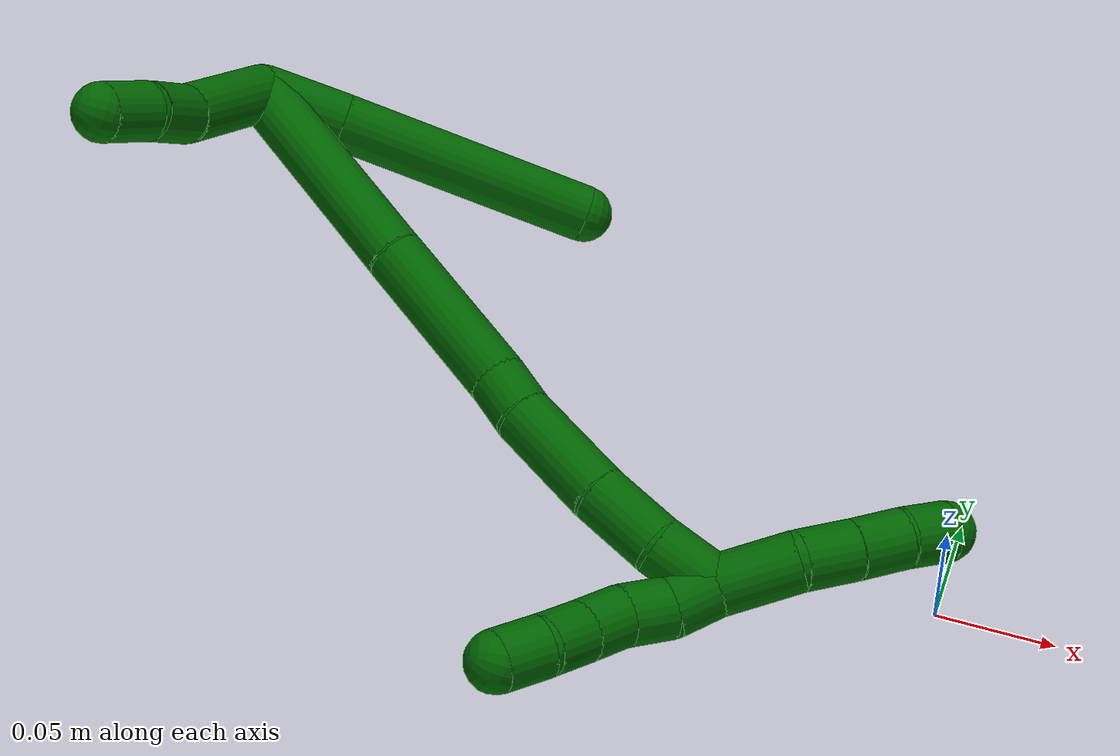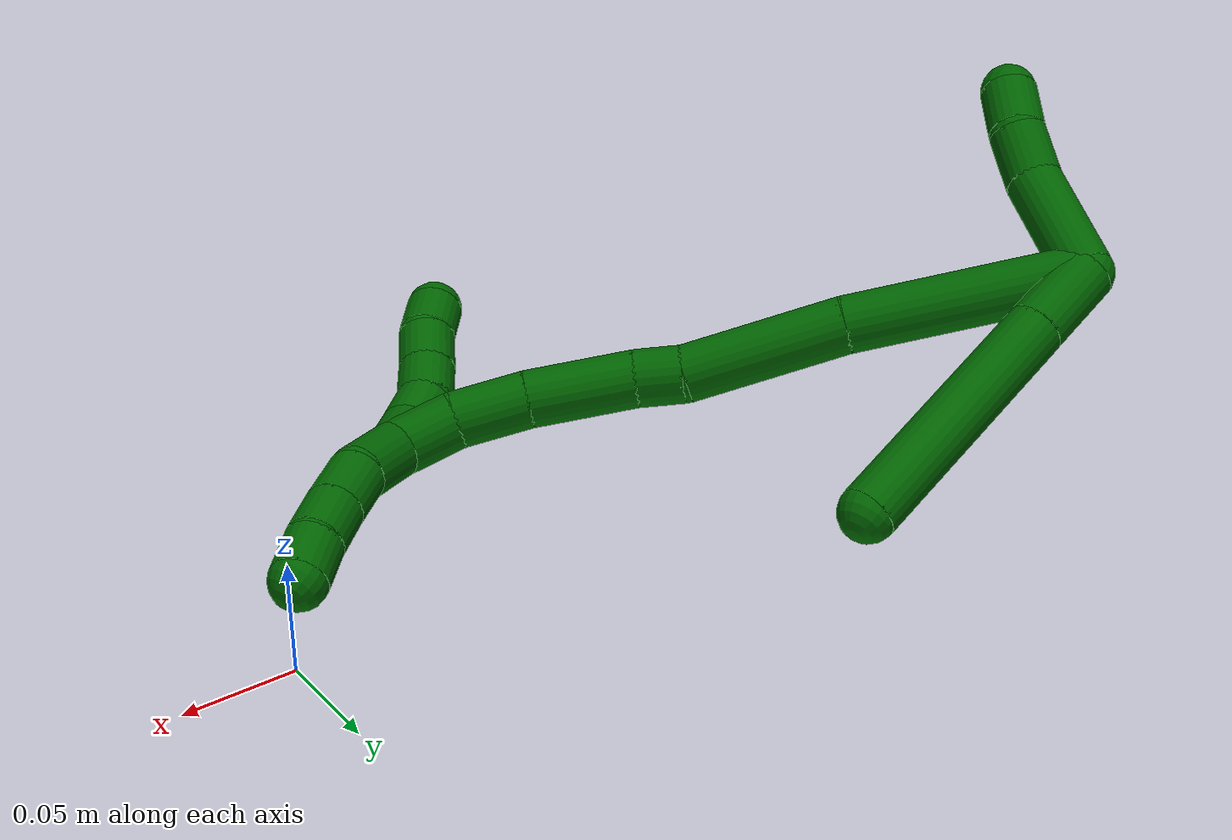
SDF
<sdf version="1.7">
 <world name="default">
  <model name="6">
   <static>0</static>
   <link name="6">
    <collision name="collision-cylinder-e_1_2_8">
     <pose>0.003204 -0.000626 -0.018126 3.10706 0.174856 2.75261</pose>
     <geometry><cylinder><radius>0.0125</radius><length>0.036834</length></cylinder></geometry>
     <surface>
      <friction><ode><mu>1.16</mu><mu2>1.16</mu2><slip1>0</slip1><slip2>0</slip2></ode></friction>
      <contact><ode><kp>1e+06</kp><kd>1</kd><max_vel>0</max_vel><min_depth>0.001</min_depth></ode></contact>
     </surface>
    </collision>
    <visual name="visual-cylinder-e_1_2_8">
     <pose>0.003204 -0.000626 -0.018126 3.10706 0.174856 2.75261</pose>
     <geometry><cylinder><radius>0.0125</radius><length>0.036834</length></cylinder></geometry>
     <material><ambient>0 0.392157 0.003922 1</ambient></material>
    </visual>
    <collision name="collision-cylinder-e_2_8_6">
     <pose>0.01605 -0.004088 -0.091934 3.0907 0.171234 2.56507</pose>
     <geometry><cylinder><radius>0.0125</radius><length>0.113166</length></cylinder></geometry>
     <surface>
      <friction><ode><mu>1.16</mu><mu2>1.16</mu2><slip1>0</slip1><slip2>0</slip2></ode></friction>
      <contact><ode><kp>1e+06</kp><kd>1</kd><max_vel>0</max_vel><min_depth>0.001</min_depth></ode></contact>
     </surface>
    </collision>
    <visual name="visual-cylinder-e_2_8_6">
     <pose>0.01605 -0.004088 -0.091934 3.0907 0.171234 2.56507</pose>
     <geometry><cylinder><radius>0.0125</radius><length>0.113166</length></cylinder></geometry>
     <material><ambient>0 0.392157 0.003922 1</ambient></material>
    </visual>
    <collision name="collision-cylinder-e_1_2_9">
     <pose>0.016166 -0.011413 0.017185 0.586252 0.664672 0.20759</pose>
     <geometry><cylinder><radius>0.0125</radius><length>0.052418</length></cylinder></geometry>
     <surface>
      <friction><ode><mu>1.16</mu><mu2>1.16</mu2><slip1>0</slip1><slip2>0</slip2></ode></friction>
      <contact><ode><kp>1e+06</kp><kd>1</kd><max_vel>0</max_vel><min_depth>0.001</min_depth></ode></contact>
     </surface>
    </collision>
    <visual name="visual-cylinder-e_1_2_9">
     <pose>0.016166 -0.011413 0.017185 0.586252 0.664672 0.20759</pose>
     <geometry><cylinder><radius>0.0125</radius><length>0.052418</length></cylinder></geometry>
     <material><ambient>0 0.392157 0.003922 1</ambient></material>
    </visual>
    <collision name="collision-cylinder-e_2_9_10">
     <pose>0.040492 -0.02547 0.043108 0.293798 0.729412 0.112861</pose>
     <geometry><cylinder><radius>0.0125</radius><length>0.02449</length></cylinder></geometry>
     <surface>
      <friction><ode><mu>1.16</mu><mu2>1.16</mu2><slip1>0</slip1><slip2>0</slip2></ode></friction>
      <contact><ode><kp>1e+06</kp><kd>1</kd><max_vel>0</max_vel><min_depth>0.001</min_depth></ode></contact>
     </surface>
    </collision>
    <visual name="visual-cylinder-e_2_9_10">
     <pose>0.040492 -0.02547 0.043108 0.293798 0.729412 0.112861</pose>
     <geometry><cylinder><radius>0.0125</radius><length>0.02449</length></cylinder></geometry>
     <material><ambient>0 0.392157 0.003922 1</ambient></material>
    </visual>
    <collision name="collision-cylinder-e_3_10_5">
     <pose>0.05411 -0.031837 0.061315 0.374606 0.49235 0.095172</pose>
     <geometry><cylinder><radius>0.0125</radius><length>0.023092</length></cylinder></geometry>
     <surface>
      <friction><ode><mu>1.16</mu><mu2>1.16</mu2><slip1>0</slip1><slip2>0</slip2></ode></friction>
      <contact><ode><kp>1e+06</kp><kd>1</kd><max_vel>0</max_vel><min_depth>0.001</min_depth></ode></contact>
     </surface>
    </collision>
    <visual name="visual-cylinder-e_3_10_5">
     <pose>0.05411 -0.031837 0.061315 0.374606 0.49235 0.095172</pose>
     <geometry><cylinder><radius>0.0125</radius><length>0.023092</length></cylinder></geometry>
     <material><ambient>0 0.392157 0.003922 1</ambient></material>
    </visual>
    <collision name="collision-cylinder-e_1_2_11">
     <pose>0.03057 -0.026689 -0.031056 2.43168 0.641275 1.46117</pose>
     <geometry><cylinder><radius>0.0125</radius><length>0.102202</length></cylinder></geometry>
     <surface>
      <friction><ode><mu>1.16</mu><mu2>1.16</mu2><slip1>0</slip1><slip2>0</slip2></ode></friction>
      <contact><ode><kp>1e+06</kp><kd>1</kd><max_vel>0</max_vel><min_depth>0.001</min_depth></ode></contact>
     </surface>
    </collision>
    <visual name="visual-cylinder-e_1_2_11">
     <pose>0.03057 -0.026689 -0.031056 2.43168 0.641275 1.46117</pose>
     <geometry><cylinder><radius>0.0125</radius><length>0.102202</length></cylinder></geometry>
     <material><ambient>0 0.392157 0.003922 1</ambient></material>
    </visual>
    <collision name="collision-cylinder-e_2_11_12">
     <pose>0.079913 -0.072105 -0.085444 2.46524 0.560423 1.3716</pose>
     <geometry><cylinder><radius>0.0125</radius><length>0.070638</length></cylinder></geometry>
     <surface>
      <friction><ode><mu>1.16</mu><mu2>1.16</mu2><slip1>0</slip1><slip2>0</slip2></ode></friction>
      <contact><ode><kp>1e+06</kp><kd>1</kd><max_vel>0</max_vel><min_depth>0.001</min_depth></ode></contact>
     </surface>
    </collision>
    <visual name="visual-cylinder-e_2_11_12">
     <pose>0.079913 -0.072105 -0.085444 2.46524 0.560423 1.3716</pose>
     <geometry><cylinder><radius>0.0125</radius><length>0.070638</length></cylinder></geometry>
     <material><ambient>0 0.392157 0.003922 1</ambient></material>
    </visual>
    <collision name="collision-cylinder-e_3_12_13">
     <pose>0.105665 -0.096457 -0.114046 2.32374 0.735633 1.45367</pose>
     <geometry><cylinder><radius>0.0125</radius><length>0.020797</length></cylinder></geometry>
     <surface>
      <friction><ode><mu>1.16</mu><mu2>1.16</mu2><slip1>0</slip1><slip2>0</slip2></ode></friction>
      <contact><ode><kp>1e+06</kp><kd>1</kd><max_vel>0</max_vel><min_depth>0.001</min_depth></ode></contact>
     </surface>
    </collision>
    <visual name="visual-cylinder-e_3_12_13">
     <pose>0.105665 -0.096457 -0.114046 2.32374 0.735633 1.45367</pose>
     <geometry><cylinder><radius>0.0125</radius><length>0.020797</length></cylinder></geometry>
     <material><ambient>0 0.392157 0.003922 1</ambient></material>
    </visual>
    <collision name="collision-cylinder-e_4_13_14">
     <pose>0.127429 -0.112691 -0.134059 2.51778 0.683307 1.66855</pose>
     <geometry><cylinder><radius>0.0125</radius><length>0.046839</length></cylinder></geometry>
     <surface>
      <friction><ode><mu>1.16</mu><mu2>1.16</mu2><slip1>0</slip1><slip2>0</slip2></ode></friction>
      <contact><ode><kp>1e+06</kp><kd>1</kd><max_vel>0</max_vel><min_depth>0.001</min_depth></ode></contact>
     </surface>
    </collision>
    <visual name="visual-cylinder-e_4_13_14">
     <pose>0.127429 -0.112691 -0.134059 2.51778 0.683307 1.66855</pose>
     <geometry><cylinder><radius>0.0125</radius><length>0.046839</length></cylinder></geometry>
     <material><ambient>0 0.392157 0.003922 1</ambient></material>
    </visual>
    <collision name="collision-cylinder-e_5_14_15">
     <pose>0.151435 -0.129592 -0.160288 2.6405 0.613351 1.78217</pose>
     <geometry><cylinder><radius>0.0125</radius><length>0.032036</length></cylinder></geometry>
     <surface>
      <friction><ode><mu>1.16</mu><mu2>1.16</mu2><slip1>0</slip1><slip2>0</slip2></ode></friction>
      <contact><ode><kp>1e+06</kp><kd>1</kd><max_vel>0</max_vel><min_depth>0.001</min_depth></ode></contact>
     </surface>
    </collision>
    <visual name="visual-cylinder-e_5_14_15">
     <pose>0.151435 -0.129592 -0.160288 2.6405 0.613351 1.78217</pose>
     <geometry><cylinder><radius>0.0125</radius><length>0.032036</length></cylinder></geometry>
     <material><ambient>0 0.392157 0.003922 1</ambient></material>
    </visual>
    <collision name="collision-cylinder-e_6_15_1">
     <pose>0.166647 -0.140347 -0.183311 2.7725 0.45112 1.77576</pose>
     <geometry><cylinder><radius>0.0125</radius><length>0.027487</length></cylinder></geometry>
     <surface>
      <friction><ode><mu>1.16</mu><mu2>1.16</mu2><slip1>0</slip1><slip2>0</slip2></ode></friction>
      <contact><ode><kp>1e+06</kp><kd>1</kd><max_vel>0</max_vel><min_depth>0.001</min_depth></ode></contact>
     </surface>
    </collision>
    <visual name="visual-cylinder-e_6_15_1">
     <pose>0.166647 -0.140347 -0.183311 2.7725 0.45112 1.77576</pose>
     <geometry><cylinder><radius>0.0125</radius><length>0.027487</length></cylinder></geometry>
     <material><ambient>0 0.392157 0.003922 1</ambient></material>
    </visual>
    <collision name="collision-cylinder-e_1_1_16">
     <pose>0.177457 -0.135295 -0.208288 -2.5256 0.284613 -0.846344</pose>
     <geometry><cylinder><radius>0.0125</radius><length>0.034315</length></cylinder></geometry>
     <surface>
      <friction><ode><mu>1.16</mu><mu2>1.16</mu2><slip1>0</slip1><slip2>0</slip2></ode></friction>
      <contact><ode><kp>1e+06</kp><kd>1</kd><max_vel>0</max_vel><min_depth>0.001</min_depth></ode></contact>
     </surface>
    </collision>
    <visual name="visual-cylinder-e_1_1_16">
     <pose>0.177457 -0.135295 -0.208288 -2.5256 0.284613 -0.846344</pose>
     <geometry><cylinder><radius>0.0125</radius><length>0.034315</length></cylinder></geometry>
     <material><ambient>0 0.392157 0.003922 1</ambient></material>
    </visual>
    <collision name="collision-cylinder-e_2_16_17">
     <pose>0.182592 -0.120533 -0.2323 -2.68088 0.026904 -0.114602</pose>
     <geometry><cylinder><radius>0.0125</radius><length>0.023614</length></cylinder></geometry>
     <surface>
      <friction><ode><mu>1.16</mu><mu2>1.16</mu2><slip1>0</slip1><slip2>0</slip2></ode></friction>
      <contact><ode><kp>1e+06</kp><kd>1</kd><max_vel>0</max_vel><min_depth>0.001</min_depth></ode></contact>
     </surface>
    </collision>
    <visual name="visual-cylinder-e_2_16_17">
     <pose>0.182592 -0.120533 -0.2323 -2.68088 0.026904 -0.114602</pose>
     <geometry><cylinder><radius>0.0125</radius><length>0.023614</length></cylinder></geometry>
     <material><ambient>0 0.392157 0.003922 1</ambient></material>
    </visual>
    <collision name="collision-cylinder-e_3_17_18">
     <pose>0.182787 -0.110193 -0.252567 -2.65794 -0.01115 0.045197</pose>
     <geometry><cylinder><radius>0.0125</radius><length>0.021904</length></cylinder></geometry>
     <surface>
      <friction><ode><mu>1.16</mu><mu2>1.16</mu2><slip1>0</slip1><slip2>0</slip2></ode></friction>
      <contact><ode><kp>1e+06</kp><kd>1</kd><max_vel>0</max_vel><min_depth>0.001</min_depth></ode></contact>
     </surface>
    </collision>
    <visual name="visual-cylinder-e_3_17_18">
     <pose>0.182787 -0.110193 -0.252567 -2.65794 -0.01115 0.045197</pose>
     <geometry><cylinder><radius>0.0125</radius><length>0.021904</length></cylinder></geometry>
     <material><ambient>0 0.392157 0.003922 1</ambient></material>
    </visual>
    <collision name="collision-cylinder-e_4_18_4">
     <pose>0.181311 -0.101302 -0.271504 -2.75159 -0.134758 0.658447</pose>
     <geometry><cylinder><radius>0.0125</radius><length>0.020167</length></cylinder></geometry>
     <surface>
      <friction><ode><mu>1.16</mu><mu2>1.16</mu2><slip1>0</slip1><slip2>0</slip2></ode></friction>
      <contact><ode><kp>1e+06</kp><kd>1</kd><max_vel>0</max_vel><min_depth>0.001</min_depth></ode></contact>
     </surface>
    </collision>
    <visual name="visual-cylinder-e_4_18_4">
     <pose>0.181311 -0.101302 -0.271504 -2.75159 -0.134758 0.658447</pose>
     <geometry><cylinder><radius>0.0125</radius><length>0.020167</length></cylinder></geometry>
     <material><ambient>0 0.392157 0.003922 1</ambient></material>
    </visual>
    <collision name="collision-cylinder-e_1_1_19">
     <pose>0.172107 -0.151262 -0.187226 0.70262 -0.053238 -0.019516</pose>
     <geometry><cylinder><radius>0.0125</radius><length>0.02</length></cylinder></geometry>
     <surface>
      <friction><ode><mu>1.16</mu><mu2>1.16</mu2><slip1>0</slip1><slip2>0</slip2></ode></friction>
      <contact><ode><kp>1e+06</kp><kd>1</kd><max_vel>0</max_vel><min_depth>0.001</min_depth></ode></contact>
     </surface>
    </collision>
    <visual name="visual-cylinder-e_1_1_19">
     <pose>0.172107 -0.151262 -0.187226 0.70262 -0.053238 -0.019516</pose>
     <geometry><cylinder><radius>0.0125</radius><length>0.02</length></cylinder></geometry>
     <material><ambient>0 0.392157 0.003922 1</ambient></material>
    </visual>
    <collision name="collision-cylinder-e_2_19_20">
     <pose>0.171753 -0.161784 -0.170472 0.41911 0.017827 0.003791</pose>
     <geometry><cylinder><radius>0.0125</radius><length>0.02</length></cylinder></geometry>
     <surface>
      <friction><ode><mu>1.16</mu><mu2>1.16</mu2><slip1>0</slip1><slip2>0</slip2></ode></friction>
      <contact><ode><kp>1e+06</kp><kd>1</kd><max_vel>0</max_vel><min_depth>0.001</min_depth></ode></contact>
     </surface>
    </collision>
    <visual name="visual-cylinder-e_2_19_20">
     <pose>0.171753 -0.161784 -0.170472 0.41911 0.017827 0.003791</pose>
     <geometry><cylinder><radius>0.0125</radius><length>0.02</length></cylinder></geometry>
     <material><ambient>0 0.392157 0.003922 1</ambient></material>
    </visual>
    <collision name="collision-cylinder-e_3_20_21">
     <pose>0.175012 -0.170717 -0.153164 0.536774 0.313169 0.086785</pose>
     <geometry><cylinder><radius>0.0125</radius><length>0.02</length></cylinder></geometry>
     <surface>
      <friction><ode><mu>1.16</mu><mu2>1.16</mu2><slip1>0</slip1><slip2>0</slip2></ode></friction>
      <contact><ode><kp>1e+06</kp><kd>1</kd><max_vel>0</max_vel><min_depth>0.001</min_depth></ode></contact>
     </surface>
    </collision>
    <visual name="visual-cylinder-e_3_20_21">
     <pose>0.175012 -0.170717 -0.153164 0.536774 0.313169 0.086785</pose>
     <geometry><cylinder><radius>0.0125</radius><length>0.02</length></cylinder></geometry>
     <material><ambient>0 0.392157 0.003922 1</ambient></material>
    </visual>
    <collision name="collision-cylinder-e_4_21_22">
     <pose>0.182009 -0.179899 -0.136862 0.488277 0.402408 0.101531</pose>
     <geometry><cylinder><radius>0.0125</radius><length>0.02</length></cylinder></geometry>
     <surface>
      <friction><ode><mu>1.16</mu><mu2>1.16</mu2><slip1>0</slip1><slip2>0</slip2></ode></friction>
      <contact><ode><kp>1e+06</kp><kd>1</kd><max_vel>0</max_vel><min_depth>0.001</min_depth></ode></contact>
     </surface>
    </collision>
    <visual name="visual-cylinder-e_4_21_22">
     <pose>0.182009 -0.179899 -0.136862 0.488277 0.402408 0.101531</pose>
     <geometry><cylinder><radius>0.0125</radius><length>0.02</length></cylinder></geometry>
     <material><ambient>0 0.392157 0.003922 1</ambient></material>
    </visual>
    <collision name="collision-cylinder-e_5_22_3">
     <pose>0.18758 -0.189127 -0.120184 0.521382 0.166167 0.044422</pose>
     <geometry><cylinder><radius>0.0125</radius><length>0.02</length></cylinder></geometry>
     <surface>
      <friction><ode><mu>1.16</mu><mu2>1.16</mu2><slip1>0</slip1><slip2>0</slip2></ode></friction>
      <contact><ode><kp>1e+06</kp><kd>1</kd><max_vel>0</max_vel><min_depth>0.001</min_depth></ode></contact>
     </surface>
    </collision>
    <visual name="visual-cylinder-e_5_22_3">
     <pose>0.18758 -0.189127 -0.120184 0.521382 0.166167 0.044422</pose>
     <geometry><cylinder><radius>0.0125</radius><length>0.02</length></cylinder></geometry>
     <material><ambient>0 0.392157 0.003922 1</ambient></material>
    </visual>
    <collision name="collision-sphere-3">
     <pose>0.189234 -0.194039 -0.111632 0 -0 0</pose>
     <geometry><sphere><radius>0.0125</radius></sphere></geometry>
     <surface>
      <friction><ode><mu>1.16</mu><mu2>1.16</mu2><slip1>0</slip1><slip2>0</slip2></ode></friction>
      <contact><ode><kp>1e+06</kp><kd>1</kd><max_vel>0</max_vel><min_depth>0.001</min_depth></ode></contact>
     </surface>
    </collision>
    <visual name="visual-sphere-3">
     <pose>0.189234 -0.194039 -0.111632 0 -0 0</pose>
     <geometry><sphere><radius>0.0125</radius></sphere></geometry>
     <material><ambient>0 0.392157 0.003922 1</ambient></material>
    </visual>
    <collision name="collision-sphere-22">
     <pose>0.185926 -0.184215 -0.128736 0 -0 0</pose>
     <geometry><sphere><radius>0.0125</radius></sphere></geometry>
     <surface>
      <friction><ode><mu>1.16</mu><mu2>1.16</mu2><slip1>0</slip1><slip2>0</slip2></ode></friction>
      <contact><ode><kp>1e+06</kp><kd>1</kd><max_vel>0</max_vel><min_depth>0.001</min_depth></ode></contact>
     </surface>
    </collision>
    <visual name="visual-sphere-22">
     <pose>0.185926 -0.184215 -0.128736 0 -0 0</pose>
     <geometry><sphere><radius>0.0125</radius></sphere></geometry>
     <material><ambient>0 0.392157 0.003922 1</ambient></material>
    </visual>
    <collision name="collision-sphere-21">
     <pose>0.178093 -0.175582 -0.144988 0 -0 0</pose>
     <geometry><sphere><radius>0.0125</radius></sphere></geometry>
     <surface>
      <friction><ode><mu>1.16</mu><mu2>1.16</mu2><slip1>0</slip1><slip2>0</slip2></ode></friction>
      <contact><ode><kp>1e+06</kp><kd>1</kd><max_vel>0</max_vel><min_depth>0.001</min_depth></ode></contact>
     </surface>
    </collision>
    <visual name="visual-sphere-21">
     <pose>0.178093 -0.175582 -0.144988 0 -0 0</pose>
     <geometry><sphere><radius>0.0125</radius></sphere></geometry>
     <material><ambient>0 0.392157 0.003922 1</ambient></material>
    </visual>
    <collision name="collision-sphere-20">
     <pose>0.171931 -0.165853 -0.161339 0 -0 0</pose>
     <geometry><sphere><radius>0.0125</radius></sphere></geometry>
     <surface>
      <friction><ode><mu>1.16</mu><mu2>1.16</mu2><slip1>0</slip1><slip2>0</slip2></ode></friction>
      <contact><ode><kp>1e+06</kp><kd>1</kd><max_vel>0</max_vel><min_depth>0.001</min_depth></ode></contact>
     </surface>
    </collision>
    <visual name="visual-sphere-20">
     <pose>0.171931 -0.165853 -0.161339 0 -0 0</pose>
     <geometry><sphere><radius>0.0125</radius></sphere></geometry>
     <material><ambient>0 0.392157 0.003922 1</ambient></material>
    </visual>
    <collision name="collision-sphere-19">
     <pose>0.171575 -0.157715 -0.179605 0 -0 0</pose>
     <geometry><sphere><radius>0.0125</radius></sphere></geometry>
     <surface>
      <friction><ode><mu>1.16</mu><mu2>1.16</mu2><slip1>0</slip1><slip2>0</slip2></ode></friction>
      <contact><ode><kp>1e+06</kp><kd>1</kd><max_vel>0</max_vel><min_depth>0.001</min_depth></ode></contact>
     </surface>
    </collision>
    <visual name="visual-sphere-19">
     <pose>0.171575 -0.157715 -0.179605 0 -0 0</pose>
     <geometry><sphere><radius>0.0125</radius></sphere></geometry>
     <material><ambient>0 0.392157 0.003922 1</ambient></material>
    </visual>
    <collision name="collision-sphere-5">
     <pose>0.059568 -0.03556 0.070784 0 -0 0</pose>
     <geometry><sphere><radius>0.0125</radius></sphere></geometry>
     <surface>
      <friction><ode><mu>1.16</mu><mu2>1.16</mu2><slip1>0</slip1><slip2>0</slip2></ode></friction>
      <contact><ode><kp>1e+06</kp><kd>1</kd><max_vel>0</max_vel><min_depth>0.001</min_depth></ode></contact>
     </surface>
    </collision>
    <visual name="visual-sphere-5">
     <pose>0.059568 -0.03556 0.070784 0 -0 0</pose>
     <geometry><sphere><radius>0.0125</radius></sphere></geometry>
     <material><ambient>0 0.392157 0.003922 1</ambient></material>
    </visual>
    <collision name="collision-sphere-10">
     <pose>0.048652 -0.028114 0.051846 0 -0 0</pose>
     <geometry><sphere><radius>0.0125</radius></sphere></geometry>
     <surface>
      <friction><ode><mu>1.16</mu><mu2>1.16</mu2><slip1>0</slip1><slip2>0</slip2></ode></friction>
      <contact><ode><kp>1e+06</kp><kd>1</kd><max_vel>0</max_vel><min_depth>0.001</min_depth></ode></contact>
     </surface>
    </collision>
    <visual name="visual-sphere-10">
     <pose>0.048652 -0.028114 0.051846 0 -0 0</pose>
     <geometry><sphere><radius>0.0125</radius></sphere></geometry>
     <material><ambient>0 0.392157 0.003922 1</ambient></material>
    </visual>
    <collision name="collision-sphere-6">
     <pose>0.025691 -0.006924 -0.147617 0 -0 0</pose>
     <geometry><sphere><radius>0.0125</radius></sphere></geometry>
     <surface>
      <friction><ode><mu>1.16</mu><mu2>1.16</mu2><slip1>0</slip1><slip2>0</slip2></ode></friction>
      <contact><ode><kp>1e+06</kp><kd>1</kd><max_vel>0</max_vel><min_depth>0.001</min_depth></ode></contact>
     </surface>
    </collision>
    <visual name="visual-sphere-6">
     <pose>0.025691 -0.006924 -0.147617 0 -0 0</pose>
     <geometry><sphere><radius>0.0125</radius></sphere></geometry>
     <material><ambient>0 0.392157 0.003922 1</ambient></material>
    </visual>
    <collision name="collision-sphere-9">
     <pose>0.032332 -0.022827 0.03437 0 -0 0</pose>
     <geometry><sphere><radius>0.0125</radius></sphere></geometry>
     <surface>
      <friction><ode><mu>1.16</mu><mu2>1.16</mu2><slip1>0</slip1><slip2>0</slip2></ode></friction>
      <contact><ode><kp>1e+06</kp><kd>1</kd><max_vel>0</max_vel><min_depth>0.001</min_depth></ode></contact>
     </surface>
    </collision>
    <visual name="visual-sphere-9">
     <pose>0.032332 -0.022827 0.03437 0 -0 0</pose>
     <geometry><sphere><radius>0.0125</radius></sphere></geometry>
     <material><ambient>0 0.392157 0.003922 1</ambient></material>
    </visual>
    <collision name="collision-sphere-2">
     <geometry><sphere><radius>0.0125</radius></sphere></geometry>
     <surface>
      <friction><ode><mu>1.16</mu><mu2>1.16</mu2><slip1>0</slip1><slip2>0</slip2></ode></friction>
      <contact><ode><kp>1e+06</kp><kd>1</kd><max_vel>0</max_vel><min_depth>0.001</min_depth></ode></contact>
     </surface>
    </collision>
    <visual name="visual-sphere-2">
     <geometry><sphere><radius>0.0125</radius></sphere></geometry>
     <material><ambient>0 0.392157 0.003922 1</ambient></material>
    </visual>
    <collision name="collision-sphere-8">
     <pose>0.006408 -0.001252 -0.036251 0 -0 0</pose>
     <geometry><sphere><radius>0.0125</radius></sphere></geometry>
     <surface>
      <friction><ode><mu>1.16</mu><mu2>1.16</mu2><slip1>0</slip1><slip2>0</slip2></ode></friction>
      <contact><ode><kp>1e+06</kp><kd>1</kd><max_vel>0</max_vel><min_depth>0.001</min_depth></ode></contact>
     </surface>
    </collision>
    <visual name="visual-sphere-8">
     <pose>0.006408 -0.001252 -0.036251 0 -0 0</pose>
     <geometry><sphere><radius>0.0125</radius></sphere></geometry>
     <material><ambient>0 0.392157 0.003922 1</ambient></material>
    </visual>
    <collision name="collision-sphere-11">
     <pose>0.061139 -0.053379 -0.062113 0 -0 0</pose>
     <geometry><sphere><radius>0.0125</radius></sphere></geometry>
     <surface>
      <friction><ode><mu>1.16</mu><mu2>1.16</mu2><slip1>0</slip1><slip2>0</slip2></ode></friction>
      <contact><ode><kp>1e+06</kp><kd>1</kd><max_vel>0</max_vel><min_depth>0.001</min_depth></ode></contact>
     </surface>
    </collision>
    <visual name="visual-sphere-11">
     <pose>0.061139 -0.053379 -0.062113 0 -0 0</pose>
     <geometry><sphere><radius>0.0125</radius></sphere></geometry>
     <material><ambient>0 0.392157 0.003922 1</ambient></material>
    </visual>
    <collision name="collision-sphere-12">
     <pose>0.098687 -0.090831 -0.108774 0 -0 0</pose>
     <geometry><sphere><radius>0.0125</radius></sphere></geometry>
     <surface>
      <friction><ode><mu>1.16</mu><mu2>1.16</mu2><slip1>0</slip1><slip2>0</slip2></ode></friction>
      <contact><ode><kp>1e+06</kp><kd>1</kd><max_vel>0</max_vel><min_depth>0.001</min_depth></ode></contact>
     </surface>
    </collision>
    <visual name="visual-sphere-12">
     <pose>0.098687 -0.090831 -0.108774 0 -0 0</pose>
     <geometry><sphere><radius>0.0125</radius></sphere></geometry>
     <material><ambient>0 0.392157 0.003922 1</ambient></material>
    </visual>
    <collision name="collision-sphere-13">
     <pose>0.112643 -0.102082 -0.119318 0 -0 0</pose>
     <geometry><sphere><radius>0.0125</radius></sphere></geometry>
     <surface>
      <friction><ode><mu>1.16</mu><mu2>1.16</mu2><slip1>0</slip1><slip2>0</slip2></ode></friction>
      <contact><ode><kp>1e+06</kp><kd>1</kd><max_vel>0</max_vel><min_depth>0.001</min_depth></ode></contact>
     </surface>
    </collision>
    <visual name="visual-sphere-13">
     <pose>0.112643 -0.102082 -0.119318 0 -0 0</pose>
     <geometry><sphere><radius>0.0125</radius></sphere></geometry>
     <material><ambient>0 0.392157 0.003922 1</ambient></material>
    </visual>
    <collision name="collision-sphere-14">
     <pose>0.142215 -0.1233 -0.1488 0 -0 0</pose>
     <geometry><sphere><radius>0.0125</radius></sphere></geometry>
     <surface>
      <friction><ode><mu>1.16</mu><mu2>1.16</mu2><slip1>0</slip1><slip2>0</slip2></ode></friction>
      <contact><ode><kp>1e+06</kp><kd>1</kd><max_vel>0</max_vel><min_depth>0.001</min_depth></ode></contact>
     </surface>
    </collision>
    <visual name="visual-sphere-14">
     <pose>0.142215 -0.1233 -0.1488 0 -0 0</pose>
     <geometry><sphere><radius>0.0125</radius></sphere></geometry>
     <material><ambient>0 0.392157 0.003922 1</ambient></material>
    </visual>
    <collision name="collision-sphere-15">
     <pose>0.160656 -0.135885 -0.171776 0 -0 0</pose>
     <geometry><sphere><radius>0.0125</radius></sphere></geometry>
     <surface>
      <friction><ode><mu>1.16</mu><mu2>1.16</mu2><slip1>0</slip1><slip2>0</slip2></ode></friction>
      <contact><ode><kp>1e+06</kp><kd>1</kd><max_vel>0</max_vel><min_depth>0.001</min_depth></ode></contact>
     </surface>
    </collision>
    <visual name="visual-sphere-15">
     <pose>0.160656 -0.135885 -0.171776 0 -0 0</pose>
     <geometry><sphere><radius>0.0125</radius></sphere></geometry>
     <material><ambient>0 0.392157 0.003922 1</ambient></material>
    </visual>
    <collision name="collision-sphere-1">
     <pose>0.172639 -0.144809 -0.194847 0 -0 0</pose>
     <geometry><sphere><radius>0.0125</radius></sphere></geometry>
     <surface>
      <friction><ode><mu>1.16</mu><mu2>1.16</mu2><slip1>0</slip1><slip2>0</slip2></ode></friction>
      <contact><ode><kp>1e+06</kp><kd>1</kd><max_vel>0</max_vel><min_depth>0.001</min_depth></ode></contact>
     </surface>
    </collision>
    <visual name="visual-sphere-1">
     <pose>0.172639 -0.144809 -0.194847 0 -0 0</pose>
     <geometry><sphere><radius>0.0125</radius></sphere></geometry>
     <material><ambient>0 0.392157 0.003922 1</ambient></material>
    </visual>
    <collision name="collision-sphere-18">
     <pose>0.182665 -0.105101 -0.262262 0 -0 0</pose>
     <geometry><sphere><radius>0.0125</radius></sphere></geometry>
     <surface>
      <friction><ode><mu>1.16</mu><mu2>1.16</mu2><slip1>0</slip1><slip2>0</slip2></ode></friction>
      <contact><ode><kp>1e+06</kp><kd>1</kd><max_vel>0</max_vel><min_depth>0.001</min_depth></ode></contact>
     </surface>
    </collision>
    <visual name="visual-sphere-18">
     <pose>0.182665 -0.105101 -0.262262 0 -0 0</pose>
     <geometry><sphere><radius>0.0125</radius></sphere></geometry>
     <material><ambient>0 0.392157 0.003922 1</ambient></material>
    </visual>
    <collision name="collision-sphere-16">
     <pose>0.182274 -0.12578 -0.221728 0 -0 0</pose>
     <geometry><sphere><radius>0.0125</radius></sphere></geometry>
     <surface>
      <friction><ode><mu>1.16</mu><mu2>1.16</mu2><slip1>0</slip1><slip2>0</slip2></ode></friction>
      <contact><ode><kp>1e+06</kp><kd>1</kd><max_vel>0</max_vel><min_depth>0.001</min_depth></ode></contact>
     </surface>
    </collision>
    <visual name="visual-sphere-16">
     <pose>0.182274 -0.12578 -0.221728 0 -0 0</pose>
     <geometry><sphere><radius>0.0125</radius></sphere></geometry>
     <material><ambient>0 0.392157 0.003922 1</ambient></material>
    </visual>
    <collision name="collision-sphere-17">
     <pose>0.182909 -0.115286 -0.242872 0 -0 0</pose>
     <geometry><sphere><radius>0.0125</radius></sphere></geometry>
     <surface>
      <friction><ode><mu>1.16</mu><mu2>1.16</mu2><slip1>0</slip1><slip2>0</slip2></ode></friction>
      <contact><ode><kp>1e+06</kp><kd>1</kd><max_vel>0</max_vel><min_depth>0.001</min_depth></ode></contact>
     </surface>
    </collision>
    <visual name="visual-sphere-17">
     <pose>0.182909 -0.115286 -0.242872 0 -0 0</pose>
     <geometry><sphere><radius>0.0125</radius></sphere></geometry>
     <material><ambient>0 0.392157 0.003922 1</ambient></material>
    </visual>
    <collision name="collision-sphere-4">
     <pose>0.179956 -0.097503 -0.280746 0 -0 0</pose>
     <geometry><sphere><radius>0.0125</radius></sphere></geometry>
     <surface>
      <friction><ode><mu>1.16</mu><mu2>1.16</mu2><slip1>0</slip1><slip2>0</slip2></ode></friction>
      <contact><ode><kp>1e+06</kp><kd>1</kd><max_vel>0</max_vel><min_depth>0.001</min_depth></ode></contact>
     </surface>
    </collision>
    <visual name="visual-sphere-4">
     <pose>0.179956 -0.097503 -0.280746 0 -0 0</pose>
     <geometry><sphere><radius>0.0125</radius></sphere></geometry>
     <material><ambient>0 0.392157 0.003922 1</ambient></material>
    </visual>
    <inertial>
     <pose>0.089628 -0.072745 -0.099643 0 -0 0</pose>
     <mass>0.75</mass>
     <inertia>
      <ixx>0.000139</ixx>
      <ixy>0</ixy>
      <ixz>0</ixz>
      <iyy>0.000339</iyy>
      <iyz>0</iyz>
      <izz>-5.5e-05</izz>
     </inertia>
    </inertial>
   </link>
   <pose>-0.330745 0.091891 0.116842 0.970301 -0.685246 -0.802758</pose>
  </model>
 </world>
</sdf>
